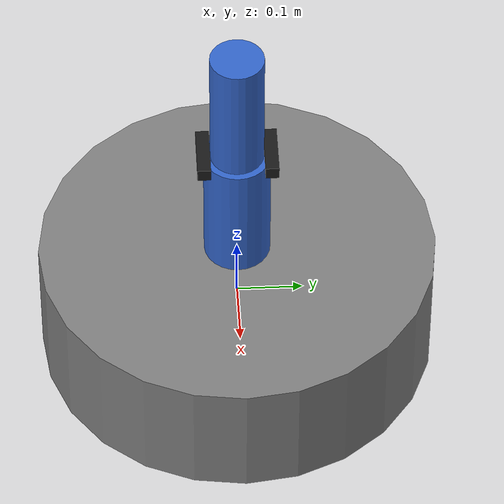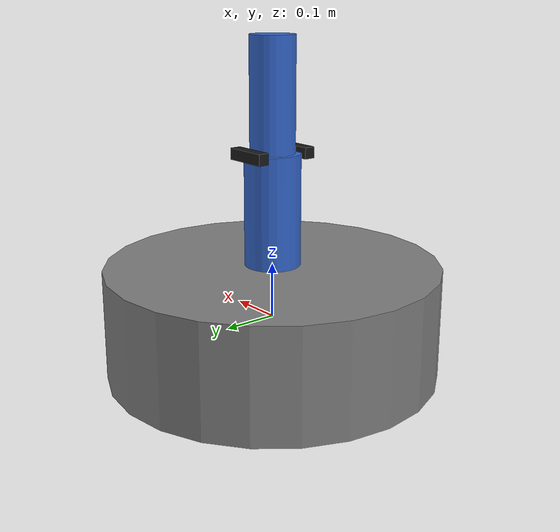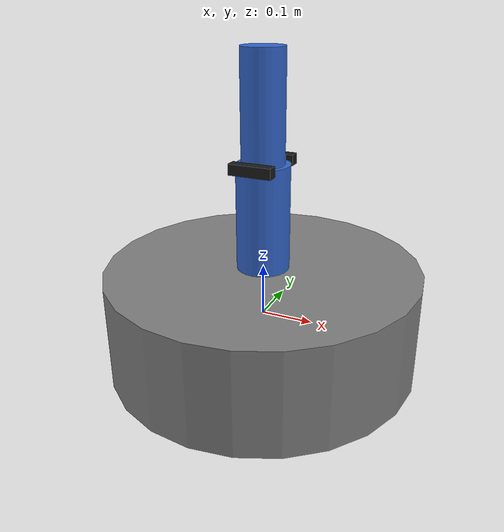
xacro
<?xml version="1.0"?>
<robot name="simple_robot_gripper"
       xmlns:xacro="http://www.ros.org/wiki/xacro">

  <!-- ================= BASE ================= -->
  <link name="base_link">
    <visual>
      <geometry>
        <cylinder length="0.2" radius="0.3"/>
      </geometry>
      <material name="gray">
        <color rgba="0.5 0.5 0.5 1"/>
      </material>
    </visual>
  </link>

  <!-- ================= ARM LINK 1 ================= -->
  <link name="arm_link1">
    <visual>
      <geometry>
        <cylinder length="0.2" radius="0.05"/>
      </geometry>
      <origin xyz="0 0 0.1"/>
      <material name="blue">
        <color rgba="0.2 0.4 0.8 1"/>
      </material>
    </visual>
  </link>

  <joint name="joint1" type="revolute">
    <parent link="base_link"/>
    <child link="arm_link1"/>
    <origin xyz="0 0 0.1" rpy="0 0 0"/>
    <axis xyz="0 0 1"/>
    <limit lower="-1.57" upper="1.57" effort="10.0" velocity="1.0"/>
  </joint>

  <!-- ================= ARM LINK 2 ================= -->
  <link name="arm_link2">
    <visual>
      <geometry>
        <cylinder length="0.2" radius="0.04"/>
      </geometry>
      <origin xyz="0 0 0.1"/>
      <material name="blue"/>
    </visual>
  </link>

  <joint name="joint2" type="revolute">
    <parent link="arm_link1"/>
    <child link="arm_link2"/>
    <origin xyz="0 0 0.2" rpy="0 0 0"/>
    <axis xyz="0 1 0"/>
    <limit lower="-1.57" upper="1.57" effort="10.0" velocity="1.0"/>
  </joint>

  <!-- ================= GRIPPER LINKS ================= -->

  <link name="left_finger">
    <visual>
      <geometry>
        <box size="0.08 0.02 0.02"/>
      </geometry>
      <material name="black">
        <color rgba="0.1 0.1 0.1 1"/>
      </material>
    </visual>
  </link>

  <link name="right_finger">
    <visual>
      <geometry>
        <box size="0.08 0.02 0.02"/>
      </geometry>
      <material name="black"/>
    </visual>
  </link>

  <!-- ================= GRIPPER JOINTS ================= -->

  <joint name="left_finger_joint" type="prismatic">
    <parent link="arm_link2"/>
    <child link="left_finger"/>
    <origin xyz="0 0.05 0" rpy="0 0 0"/>
    <axis xyz="1 -1 0"/>
    <limit lower="0.0" upper="0.04" effort="5.0" velocity="0.2"/>
  </joint>

  <joint name="right_finger_joint" type="prismatic">
    <parent link="arm_link2"/>
    <child link="right_finger"/>
    <origin xyz="0 -0.05 0" rpy="0 0 0"/>
    <axis xyz="1 1 0"/>
    <limit lower="0.0" upper="0.04" effort="5.0" velocity="0.2"/>
  </joint>

  <!-- ================= ROS2 CONTROL ================= -->

  <ros2_control name="SimpleSystem" type="system">

    <hardware>
      <plugin>mock_components/GenericSystem</plugin>
    </hardware>

    <joint name="joint1">
      <command_interface name="position"/>
      <state_interface name="position"/>
    </joint>

    <joint name="joint2">
      <command_interface name="position"/>
      <state_interface name="position"/>
    </joint>

    <joint name="left_finger_joint">
      <command_interface name="position"/>
      <state_interface name="position"/>
    </joint>

    <joint name="right_finger_joint">
      <command_interface name="position"/>
      <state_interface name="position"/>
    </joint>

  </ros2_control>

</robot>
